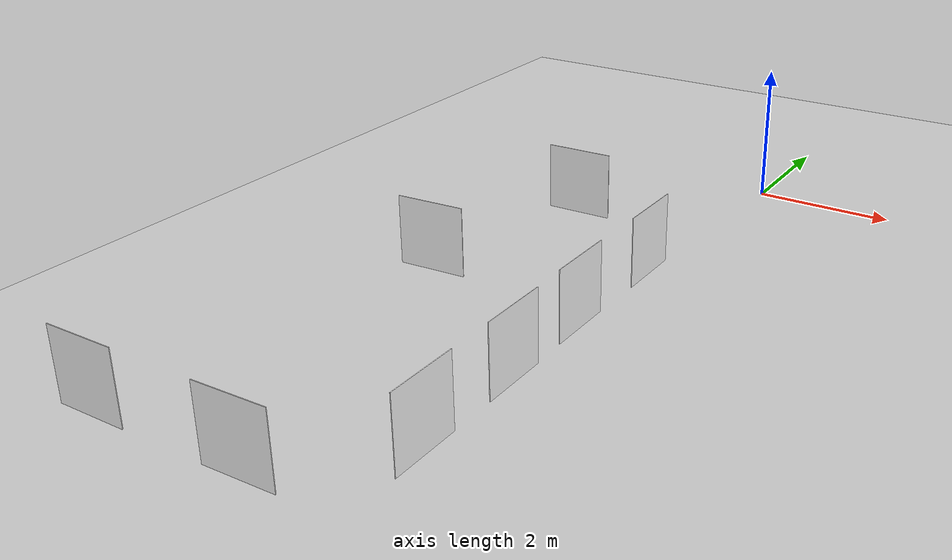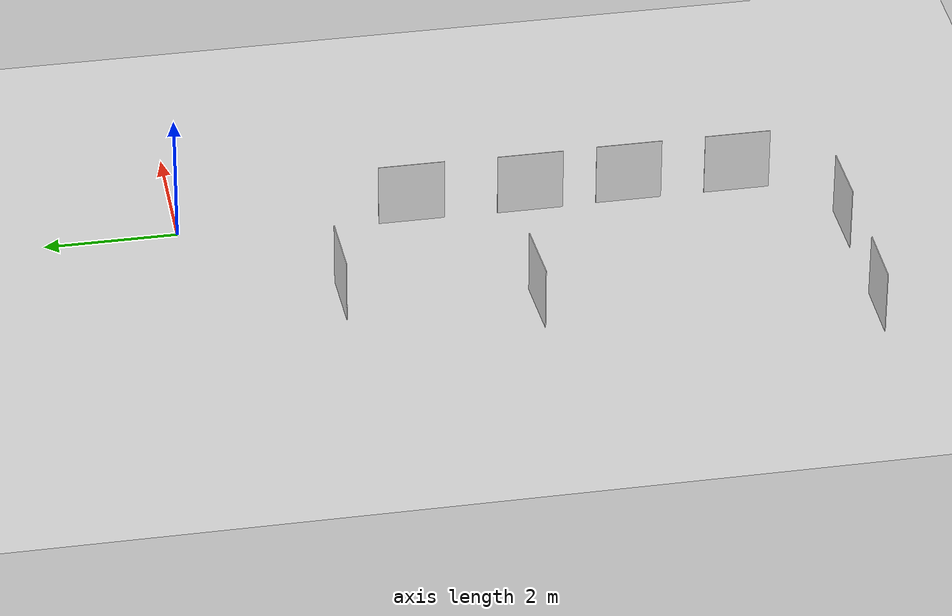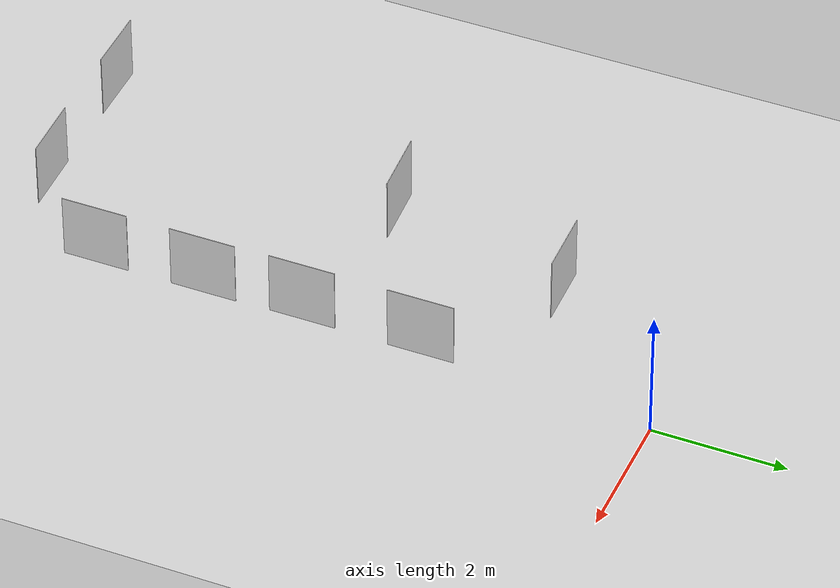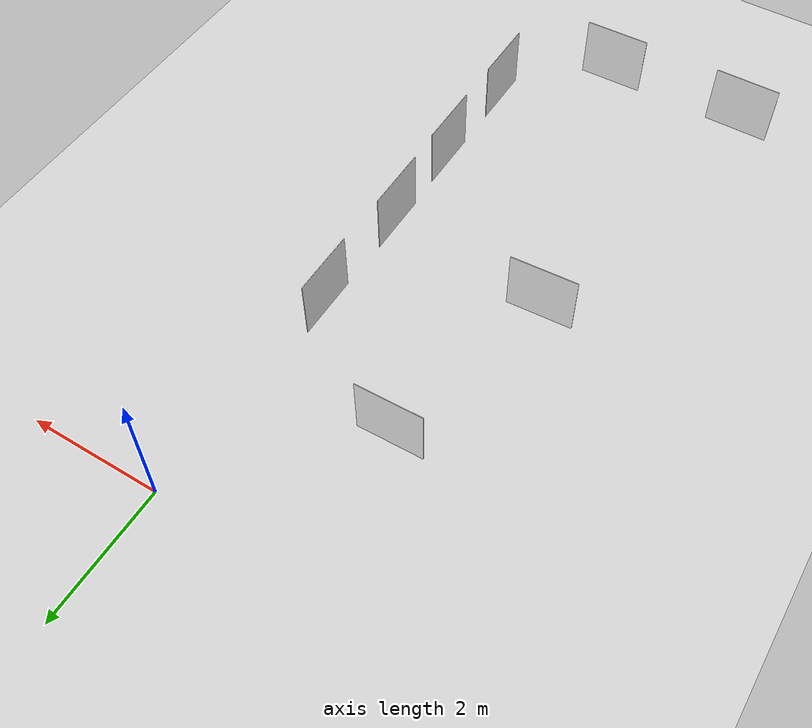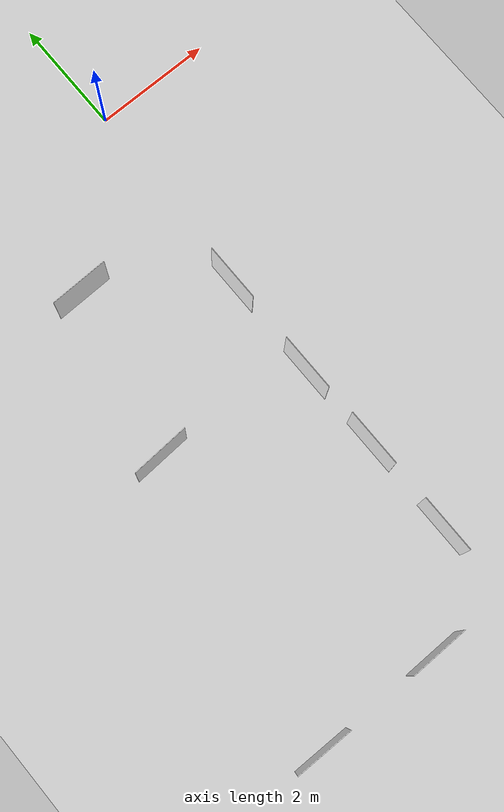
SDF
<sdf version="1.6">
 <world name="default">
  <model name="ground_plane">
   <static>1</static>
   <link name="link">
    <collision name="collision">
     <geometry><plane><normal>0 0 1</normal><size>100 100</size></plane></geometry>
     <surface><friction><ode><mu>100</mu><mu2>50</mu2></ode></friction></surface>
    </collision>
    <visual name="visual">
     <cast_shadows>0</cast_shadows>
     <geometry><plane><normal>0 0 1</normal><size>100 100</size></plane></geometry>
     <material>
      <script><uri>file://media/materials/scripts/gazebo.material</uri><name>Gazebo/Grey</name></script>
     </material>
    </visual>
   </link>
  </model>
  <model name="Gas_2">
   <link name="link_0">
    <pose>4e-06 0 0 0 -0 0</pose>
    <inertial>
     <mass>1</mass>
     <inertia>
      <ixx>0.166667</ixx>
      <ixy>0</ixy>
      <ixz>0</ixz>
      <iyy>0.166667</iyy>
      <iyz>0</iyz>
      <izz>0.166667</izz>
     </inertia>
    </inertial>
    <visual name="visual">
     <geometry><box><size>0.01 1 1</size></box></geometry>
     <material>
      <lighting>1</lighting>
      <script>
       <uri>model://gas_2_N/materials/scripts</uri>
       <uri>model://gas_2_N/materials/textures</uri>
       <name>Gas/Gas2N</name>
      </script>
      <ambient>1 1 1 1</ambient>
      <diffuse>1 1 1 1</diffuse>
      <specular>0.01 0.01 0.01 1</specular>
      <emissive>1 1 1 1</emissive>
     </material>
     <cast_shadows>0</cast_shadows>
    </visual>
    <collision name="collision">
     <geometry><box><size>0.01 1 1</size></box></geometry>
     <surface>
      <friction>
       <ode><mu>1</mu><mu2>1</mu2><fdir1>0 0 0</fdir1><slip1>0</slip1><slip2>0</slip2></ode>
       <torsional>
        <coefficient>1</coefficient>
        <patch_radius>0</patch_radius>
        <surface_radius>0</surface_radius>
        <use_patch_radius>1</use_patch_radius>
        <ode><slip>0</slip></ode>
       </torsional>
      </friction>
      <bounce><restitution_coefficient>0</restitution_coefficient><threshold>1e+06</threshold></bounce>
      <contact>
       <collide_without_contact>0</collide_without_contact>
       <collide_without_contact_bitmask>1</collide_without_contact_bitmask>
       <collide_bitmask>1</collide_bitmask>
       <ode>
        <soft_cfm>0</soft_cfm>
        <soft_erp>0.2</soft_erp>
        <kp>1e+13</kp>
        <kd>1</kd>
        <max_vel>0.01</max_vel>
        <min_depth>0</min_depth>
       </ode>
       <bullet>
        <split_impulse>1</split_impulse>
        <split_impulse_penetration_threshold>-0.01</split_impulse_penetration_threshold>
        <soft_cfm>0</soft_cfm>
        <soft_erp>0.2</soft_erp>
        <kp>1e+13</kp>
        <kd>1</kd>
       </bullet>
      </contact>
     </surface>
    </collision>
   </link>
   <static>0</static>
   <pose>-0.216085 -8.48236 0.5 -0 -7e-06 4e-06</pose>
  </model>
  <model name="Gas_3">
   <link name="link_0">
    <pose>4e-06 0 0 0 -0 0</pose>
    <inertial>
     <mass>1</mass>
     <inertia>
      <ixx>0.166667</ixx>
      <ixy>0</ixy>
      <ixz>0</ixz>
      <iyy>0.166667</iyy>
      <iyz>0</iyz>
      <izz>0.166667</izz>
     </inertia>
    </inertial>
    <visual name="visual">
     <geometry><box><size>0.01 1 1</size></box></geometry>
     <material>
      <lighting>1</lighting>
      <script>
       <uri>model://gas_3_N/materials/scripts</uri>
       <uri>model://gas_3_N/materials/textures</uri>
       <name>Gas/Gas3N</name>
      </script>
      <ambient>1 1 1 1</ambient>
      <diffuse>1 1 1 1</diffuse>
      <specular>0.01 0.01 0.01 1</specular>
      <emissive>1 1 1 1</emissive>
     </material>
     <cast_shadows>0</cast_shadows>
    </visual>
    <collision name="collision">
     <geometry><box><size>0.01 1 1</size></box></geometry>
     <surface>
      <friction>
       <ode><mu>1</mu><mu2>1</mu2><fdir1>0 0 0</fdir1><slip1>0</slip1><slip2>0</slip2></ode>
       <torsional>
        <coefficient>1</coefficient>
        <patch_radius>0</patch_radius>
        <surface_radius>0</surface_radius>
        <use_patch_radius>1</use_patch_radius>
        <ode><slip>0</slip></ode>
       </torsional>
      </friction>
      <bounce><restitution_coefficient>0</restitution_coefficient><threshold>1e+06</threshold></bounce>
      <contact>
       <collide_without_contact>0</collide_without_contact>
       <collide_without_contact_bitmask>1</collide_without_contact_bitmask>
       <collide_bitmask>1</collide_bitmask>
       <ode>
        <soft_cfm>0</soft_cfm>
        <soft_erp>0.2</soft_erp>
        <kp>1e+13</kp>
        <kd>1</kd>
        <max_vel>0.01</max_vel>
        <min_depth>0</min_depth>
       </ode>
       <bullet>
        <split_impulse>1</split_impulse>
        <split_impulse_penetration_threshold>-0.01</split_impulse_penetration_threshold>
        <soft_cfm>0</soft_cfm>
        <soft_erp>0.2</soft_erp>
        <kp>1e+13</kp>
        <kd>1</kd>
       </bullet>
      </contact>
     </surface>
    </collision>
   </link>
   <static>0</static>
   <pose>-3.73377 -9.81682 0.5 0 1e-06 -1.57082</pose>
  </model>
  <model name="Gas_4_1">
   <link name="link_0">
    <pose>4e-06 0 0 0 -0 0</pose>
    <inertial>
     <mass>1</mass>
     <inertia>
      <ixx>0.166667</ixx>
      <ixy>0</ixy>
      <ixz>0</ixz>
      <iyy>0.166667</iyy>
      <iyz>0</iyz>
      <izz>0.166667</izz>
     </inertia>
    </inertial>
    <visual name="visual">
     <geometry><box><size>0.01 1 1</size></box></geometry>
     <material>
      <lighting>1</lighting>
      <script>
       <uri>model://gas_4_N/materials/scripts</uri>
       <uri>model://gas_4_N/materials/textures</uri>
       <name>Gas/Gas4N</name>
      </script>
      <ambient>1 1 1 1</ambient>
      <diffuse>1 1 1 1</diffuse>
      <specular>0.01 0.01 0.01 1</specular>
      <emissive>1 1 1 1</emissive>
     </material>
     <cast_shadows>0</cast_shadows>
    </visual>
    <collision name="collision">
     <geometry><box><size>0.01 1 1</size></box></geometry>
     <surface>
      <friction>
       <ode><mu>1</mu><mu2>1</mu2><fdir1>0 0 0</fdir1><slip1>0</slip1><slip2>0</slip2></ode>
       <torsional>
        <coefficient>1</coefficient>
        <patch_radius>0</patch_radius>
        <surface_radius>0</surface_radius>
        <use_patch_radius>1</use_patch_radius>
        <ode><slip>0</slip></ode>
       </torsional>
      </friction>
      <bounce><restitution_coefficient>0</restitution_coefficient><threshold>1e+06</threshold></bounce>
      <contact>
       <collide_without_contact>0</collide_without_contact>
       <collide_without_contact_bitmask>1</collide_without_contact_bitmask>
       <collide_bitmask>1</collide_bitmask>
       <ode>
        <soft_cfm>0</soft_cfm>
        <soft_erp>0.2</soft_erp>
        <kp>1e+13</kp>
        <kd>1</kd>
        <max_vel>0.01</max_vel>
        <min_depth>0</min_depth>
       </ode>
       <bullet>
        <split_impulse>1</split_impulse>
        <split_impulse_penetration_threshold>-0.01</split_impulse_penetration_threshold>
        <soft_cfm>0</soft_cfm>
        <soft_erp>0.2</soft_erp>
        <kp>1e+13</kp>
        <kd>1</kd>
       </bullet>
      </contact>
     </surface>
    </collision>
   </link>
   <static>0</static>
   <pose>-1.54572 -9.8071 0.5 0 -1e-06 1.59032</pose>
  </model>
  <model name="Gas_1_0">
   <link name="link_0">
    <pose>4e-06 0 0 0 -0 0</pose>
    <inertial>
     <mass>1</mass>
     <inertia>
      <ixx>0.166667</ixx>
      <ixy>0</ixy>
      <ixz>0</ixz>
      <iyy>0.166667</iyy>
      <iyz>0</iyz>
      <izz>0.166667</izz>
     </inertia>
    </inertial>
    <visual name="visual">
     <geometry><box><size>0.01 1 1</size></box></geometry>
     <material>
      <lighting>1</lighting>
      <script>
       <uri>model://gas_1_N/materials/scripts</uri>
       <uri>model://gas_1_N/materials/textures</uri>
       <name>Gas/Gas1N</name>
      </script>
      <ambient>1 1 1 1</ambient>
      <diffuse>1 1 1 1</diffuse>
      <specular>0.01 0.01 0.01 1</specular>
      <emissive>1 1 1 1</emissive>
     </material>
     <cast_shadows>0</cast_shadows>
    </visual>
    <collision name="collision">
     <geometry><box><size>0.01 1 1</size></box></geometry>
     <surface>
      <friction>
       <ode><mu>1</mu><mu2>1</mu2><fdir1>0 0 0</fdir1><slip1>0</slip1><slip2>0</slip2></ode>
       <torsional>
        <coefficient>1</coefficient>
        <patch_radius>0</patch_radius>
        <surface_radius>0</surface_radius>
        <use_patch_radius>1</use_patch_radius>
        <ode><slip>0</slip></ode>
       </torsional>
      </friction>
      <bounce><restitution_coefficient>0</restitution_coefficient><threshold>1e+06</threshold></bounce>
      <contact>
       <collide_without_contact>0</collide_without_contact>
       <collide_without_contact_bitmask>1</collide_without_contact_bitmask>
       <collide_bitmask>1</collide_bitmask>
       <ode>
        <soft_cfm>0</soft_cfm>
        <soft_erp>0.2</soft_erp>
        <kp>1e+13</kp>
        <kd>1</kd>
        <max_vel>0.01</max_vel>
        <min_depth>0</min_depth>
       </ode>
       <bullet>
        <split_impulse>1</split_impulse>
        <split_impulse_penetration_threshold>-0.01</split_impulse_penetration_threshold>
        <soft_cfm>0</soft_cfm>
        <soft_erp>0.2</soft_erp>
        <kp>1e+13</kp>
        <kd>1</kd>
       </bullet>
      </contact>
     </surface>
    </collision>
   </link>
   <static>0</static>
   <pose>-0.216072 -6.81938 0.5 -0 2e-06 5.4e-05</pose>
  </model>
  <model name="Gas_4_0">
   <link name="link_0">
    <pose>4e-06 0 0 0 -0 0</pose>
    <inertial>
     <mass>1</mass>
     <inertia>
      <ixx>0.166667</ixx>
      <ixy>0</ixy>
      <ixz>0</ixz>
      <iyy>0.166667</iyy>
      <iyz>0</iyz>
      <izz>0.166667</izz>
     </inertia>
    </inertial>
    <visual name="visual">
     <geometry><box><size>0.01 1 1</size></box></geometry>
     <material>
      <lighting>1</lighting>
      <script>
       <uri>model://gas_4_N/materials/scripts</uri>
       <uri>model://gas_4_N/materials/textures</uri>
       <name>Gas/Gas4N</name>
      </script>
      <ambient>1 1 1 1</ambient>
      <diffuse>1 1 1 1</diffuse>
      <specular>0.01 0.01 0.01 1</specular>
      <emissive>1 1 1 1</emissive>
     </material>
     <cast_shadows>0</cast_shadows>
    </visual>
    <collision name="collision">
     <geometry><box><size>0.01 1 1</size></box></geometry>
     <surface>
      <friction>
       <ode><mu>1</mu><mu2>1</mu2><fdir1>0 0 0</fdir1><slip1>0</slip1><slip2>0</slip2></ode>
       <torsional>
        <coefficient>1</coefficient>
        <patch_radius>0</patch_radius>
        <surface_radius>0</surface_radius>
        <use_patch_radius>1</use_patch_radius>
        <ode><slip>0</slip></ode>
       </torsional>
      </friction>
      <bounce><restitution_coefficient>0</restitution_coefficient><threshold>1e+06</threshold></bounce>
      <contact>
       <collide_without_contact>0</collide_without_contact>
       <collide_without_contact_bitmask>1</collide_without_contact_bitmask>
       <collide_bitmask>1</collide_bitmask>
       <ode>
        <soft_cfm>0</soft_cfm>
        <soft_erp>0.2</soft_erp>
        <kp>1e+13</kp>
        <kd>1</kd>
        <max_vel>0.01</max_vel>
        <min_depth>0</min_depth>
       </ode>
       <bullet>
        <split_impulse>1</split_impulse>
        <split_impulse_penetration_threshold>-0.01</split_impulse_penetration_threshold>
        <soft_cfm>0</soft_cfm>
        <soft_erp>0.2</soft_erp>
        <kp>1e+13</kp>
        <kd>1</kd>
       </bullet>
      </contact>
     </surface>
    </collision>
   </link>
   <static>0</static>
   <pose>-0.234643 -5.30975 0.5 0 1e-06 0</pose>
  </model>
  <model name="Gas_3_1">
   <link name="link_0">
    <pose>4e-06 0 0 0 -0 0</pose>
    <inertial>
     <mass>1</mass>
     <inertia>
      <ixx>0.166667</ixx>
      <ixy>0</ixy>
      <ixz>0</ixz>
      <iyy>0.166667</iyy>
      <iyz>0</iyz>
      <izz>0.166667</izz>
     </inertia>
    </inertial>
    <visual name="visual">
     <geometry><box><size>0.01 1 1</size></box></geometry>
     <material>
      <lighting>1</lighting>
      <script>
       <uri>model://gas_3_N/materials/scripts</uri>
       <uri>model://gas_3_N/materials/textures</uri>
       <name>Gas/Gas3N</name>
      </script>
      <ambient>1 1 1 1</ambient>
      <diffuse>1 1 1 1</diffuse>
      <specular>0.01 0.01 0.01 1</specular>
      <emissive>1 1 1 1</emissive>
     </material>
     <cast_shadows>0</cast_shadows>
    </visual>
    <collision name="collision">
     <geometry><box><size>0.01 1 1</size></box></geometry>
     <surface>
      <friction>
       <ode><mu>1</mu><mu2>1</mu2><fdir1>0 0 0</fdir1><slip1>0</slip1><slip2>0</slip2></ode>
       <torsional>
        <coefficient>1</coefficient>
        <patch_radius>0</patch_radius>
        <surface_radius>0</surface_radius>
        <use_patch_radius>1</use_patch_radius>
        <ode><slip>0</slip></ode>
       </torsional>
      </friction>
      <bounce><restitution_coefficient>0</restitution_coefficient><threshold>1e+06</threshold></bounce>
      <contact>
       <collide_without_contact>0</collide_without_contact>
       <collide_without_contact_bitmask>1</collide_without_contact_bitmask>
       <collide_bitmask>1</collide_bitmask>
       <ode>
        <soft_cfm>0</soft_cfm>
        <soft_erp>0.2</soft_erp>
        <kp>1e+13</kp>
        <kd>1</kd>
        <max_vel>0.01</max_vel>
        <min_depth>0</min_depth>
       </ode>
       <bullet>
        <split_impulse>1</split_impulse>
        <split_impulse_penetration_threshold>-0.01</split_impulse_penetration_threshold>
        <soft_cfm>0</soft_cfm>
        <soft_erp>0.2</soft_erp>
        <kp>1e+13</kp>
        <kd>1</kd>
       </bullet>
      </contact>
     </surface>
    </collision>
   </link>
   <static>0</static>
   <pose>-0.216043 -3.50712 0.5 0 -0 4e-06</pose>
  </model>
  <model name="Gas_1_2">
   <link name="link_0">
    <pose>4e-06 0 0 0 -0 0</pose>
    <inertial>
     <mass>1</mass>
     <inertia>
      <ixx>0.166667</ixx>
      <ixy>0</ixy>
      <ixz>0</ixz>
      <iyy>0.166667</iyy>
      <iyz>0</iyz>
      <izz>0.166667</izz>
     </inertia>
    </inertial>
    <visual name="visual">
     <geometry><box><size>0.01 1 1</size></box></geometry>
     <material>
      <lighting>1</lighting>
      <script>
       <uri>model://gas_1_N/materials/scripts</uri>
       <uri>model://gas_1_N/materials/textures</uri>
       <name>Gas/Gas1N</name>
      </script>
      <ambient>1 1 1 1</ambient>
      <diffuse>1 1 1 1</diffuse>
      <specular>0.01 0.01 0.01 1</specular>
      <emissive>1 1 1 1</emissive>
     </material>
     <cast_shadows>0</cast_shadows>
    </visual>
    <collision name="collision">
     <geometry><box><size>0.01 1 1</size></box></geometry>
     <surface>
      <friction>
       <ode><mu>1</mu><mu2>1</mu2><fdir1>0 0 0</fdir1><slip1>0</slip1><slip2>0</slip2></ode>
       <torsional>
        <coefficient>1</coefficient>
        <patch_radius>0</patch_radius>
        <surface_radius>0</surface_radius>
        <use_patch_radius>1</use_patch_radius>
        <ode><slip>0</slip></ode>
       </torsional>
      </friction>
      <bounce><restitution_coefficient>0</restitution_coefficient><threshold>1e+06</threshold></bounce>
      <contact>
       <collide_without_contact>0</collide_without_contact>
       <collide_without_contact_bitmask>1</collide_without_contact_bitmask>
       <collide_bitmask>1</collide_bitmask>
       <ode>
        <soft_cfm>0</soft_cfm>
        <soft_erp>0.2</soft_erp>
        <kp>1e+13</kp>
        <kd>1</kd>
        <max_vel>0.01</max_vel>
        <min_depth>0</min_depth>
       </ode>
       <bullet>
        <split_impulse>1</split_impulse>
        <split_impulse_penetration_threshold>-0.01</split_impulse_penetration_threshold>
        <soft_cfm>0</soft_cfm>
        <soft_erp>0.2</soft_erp>
        <kp>1e+13</kp>
        <kd>1</kd>
       </bullet>
      </contact>
     </surface>
    </collision>
   </link>
   <static>0</static>
   <pose>-2.11666 -2.13957 0.5 0 1e-06 1.59619</pose>
  </model>
  <model name="Gas_1_3">
   <link name="link_0">
    <pose>4e-06 0 0 0 -0 0</pose>
    <inertial>
     <mass>1</mass>
     <inertia>
      <ixx>0.166667</ixx>
      <ixy>0</ixy>
      <ixz>0</ixz>
      <iyy>0.166667</iyy>
      <iyz>0</iyz>
      <izz>0.166667</izz>
     </inertia>
    </inertial>
    <visual name="visual">
     <geometry><box><size>0.01 1 1</size></box></geometry>
     <material>
      <lighting>1</lighting>
      <script>
       <uri>model://gas_1_N/materials/scripts</uri>
       <uri>model://gas_1_N/materials/textures</uri>
       <name>Gas/Gas1N</name>
      </script>
      <ambient>1 1 1 1</ambient>
      <diffuse>1 1 1 1</diffuse>
      <specular>0.01 0.01 0.01 1</specular>
      <emissive>1 1 1 1</emissive>
     </material>
     <cast_shadows>0</cast_shadows>
    </visual>
    <collision name="collision">
     <geometry><box><size>0.01 1 1</size></box></geometry>
     <surface>
      <friction>
       <ode><mu>1</mu><mu2>1</mu2><fdir1>0 0 0</fdir1><slip1>0</slip1><slip2>0</slip2></ode>
       <torsional>
        <coefficient>1</coefficient>
        <patch_radius>0</patch_radius>
        <surface_radius>0</surface_radius>
        <use_patch_radius>1</use_patch_radius>
        <ode><slip>0</slip></ode>
       </torsional>
      </friction>
      <bounce><restitution_coefficient>0</restitution_coefficient><threshold>1e+06</threshold></bounce>
      <contact>
       <collide_without_contact>0</collide_without_contact>
       <collide_without_contact_bitmask>1</collide_without_contact_bitmask>
       <collide_bitmask>1</collide_bitmask>
       <ode>
        <soft_cfm>0</soft_cfm>
        <soft_erp>0.2</soft_erp>
        <kp>1e+13</kp>
        <kd>1</kd>
        <max_vel>0.01</max_vel>
        <min_depth>0</min_depth>
       </ode>
       <bullet>
        <split_impulse>1</split_impulse>
        <split_impulse_penetration_threshold>-0.01</split_impulse_penetration_threshold>
        <soft_cfm>0</soft_cfm>
        <soft_erp>0.2</soft_erp>
        <kp>1e+13</kp>
        <kd>1</kd>
       </bullet>
      </contact>
     </surface>
    </collision>
   </link>
   <static>0</static>
   <pose>-2.79683 -4.93887 0.5 0 7e-06 1.63067</pose>
  </model>
 </world>
</sdf>
